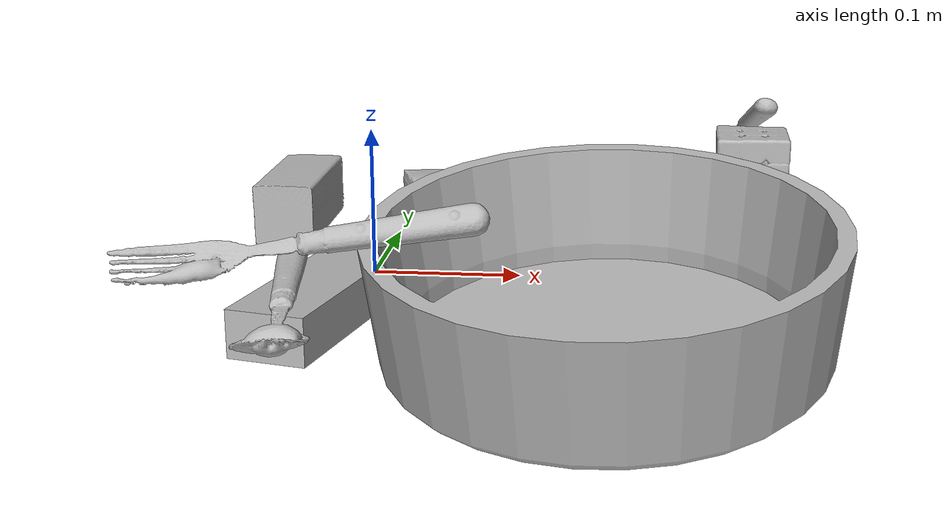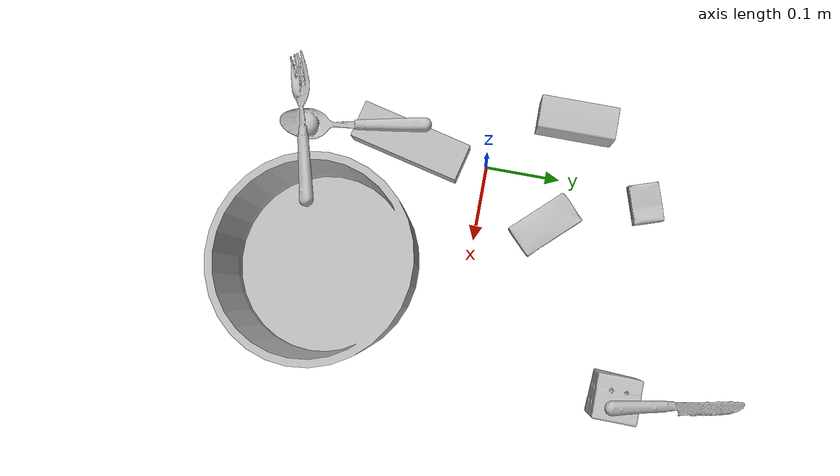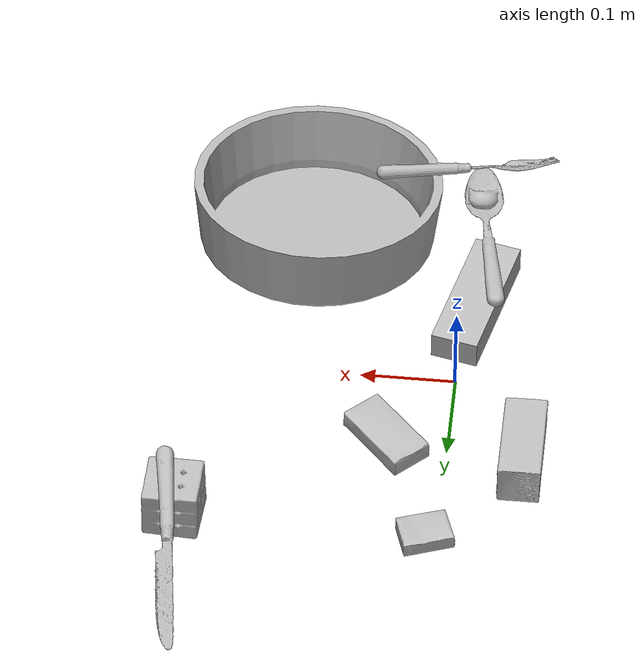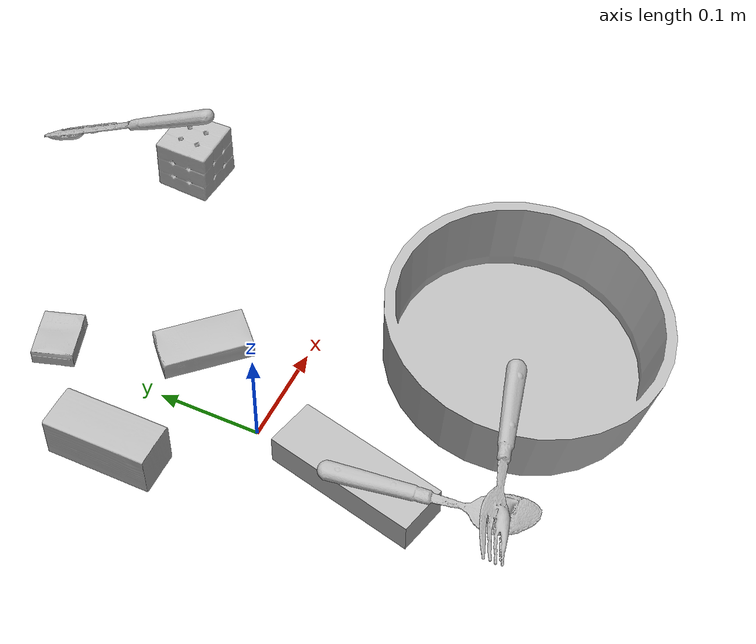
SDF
<sdf version="1.4">
  <world name="default">
    <light name="light1" type="point">
      <pose>0 0 1 0 0 0</pose>
      <diffuse>3 3 3 1</diffuse>
      <specular>3 3 3 1</specular>
    </light>
    <light name="light2" type="point">
      <pose>0 0.5 2 0 0 0</pose>
      <diffuse>1 1 1 1</diffuse>
      <specular>1 1 1 1</specular>
    </light>
    <light name="light3" type="point">
      <pose>0 0.5 2 0 0 0</pose>
      <diffuse>3 3 3 1</diffuse>
      <specular>3 3 3 1</specular>
    </light>
    <scene>
      <ambient>0.7 0.7 0.7</ambient>
    </scene>
    <model name="box11">
      <link name="link_box11">
        <collision name="default">
          <geometry>
            <mesh>
              <uri>model://cracker_box/collision_meshes/collision.obj</uri>
              <scale>0.25 0.25 0.25</scale>
            </mesh>
          </geometry>
          <surface>
            <friction>
              <ode>
                <mu>0.5</mu>
                <mu2>0.5</mu2>
              </ode>
            </friction>
          <contact>
        <ode>
            <max_vel>0</max_vel>
            <min_depth>0.0001</min_depth>
            <kp>1e8</kp>
        </ode>
    </contact></surface>
        </collision>
        <visual name="default">
          <geometry>
            <mesh>
              <uri>model://cracker_box/visual_meshes/visual.dae</uri>
              <scale>0.25 0.25 0.25</scale>
            </mesh>
          </geometry>
        </visual>
        <inertial>
          <mass>0.04448898881673813</mass>
          <pose>0.00023660270380787551 6.358561950037256e-05 -0.000425738311605528 -0.00031620780372907927 -0.011106488668730609 0.002546795468482302</pose>
          <inertia>
            <ixx>7.0725087e-06</ixx>
            <iyy>1.1678099e-05</iyy>
            <izz>1.666572e-05</izz>
            <ixy>0</ixy>
            <ixz>0</ixz>
            <iyz>0</iyz>
          </inertia>
        </inertial>
      </link>
      <pose>0.011487254872918129 0.21769677102565765 0.009096027351915836 -0.014050597269477065 -0.0050164433940262385 -2.8218114060471864</pose>
    </model>
    <model name="box12">
      <link name="link_box12">
        <collision name="default">
          <geometry>
            <mesh>
              <uri>model://wood_block/collision_meshes/collision.obj</uri>
              <scale>0.5 0.5 0.5</scale>
            </mesh>
          </geometry>
          <surface>
            <friction>
              <ode>
                <mu>0.5</mu>
                <mu2>0.5</mu2>
              </ode>
            </friction>
          <contact>
        <ode>
            <max_vel>0</max_vel>
            <min_depth>0.0001</min_depth>
            <kp>1e8</kp>
        </ode>
    </contact></surface>
        </collision>
        <visual name="default">
          <geometry>
            <mesh>
              <uri>model://wood_block/visual_meshes/visual.dae</uri>
              <scale>0.5 0.5 0.5</scale>
            </mesh>
          </geometry>
        </visual>
        <inertial>
          <mass>0.30308207869529724</mass>
          <pose>-2.906657982748584e-06 -0.000285404734313488 0.00013204291462898254 -0.05220975528484064 -0.0051926956083073895 -0.006861380255216688</pose>
          <inertia>
            <ixx>0.00010139242</ixx>
            <iyy>0.00032029866</iyy>
            <izz>0.0003191006</izz>
            <ixy>0</ixy>
            <ixz>0</ixz>
            <iyz>0</iyz>
          </inertia>
        </inertial>
      </link>
      <pose>-0.07841816544532776 0.10751324892044067 0.0226292684674263 -0.005208433516962111 0.00571877984796403 1.5743568743845602</pose>
    </model>
    <model name="box13">
      <link name="link_box13">
        <collision name="default">
          <geometry>
            <mesh>
              <uri>model://pudding_box/collision_meshes/collision.obj</uri>
              <scale>0.5 0.5 0.5</scale>
            </mesh>
          </geometry>
          <surface>
            <friction>
              <ode>
                <mu>0.5</mu>
                <mu2>0.5</mu2>
              </ode>
            </friction>
          <contact>
        <ode>
            <max_vel>0</max_vel>
            <min_depth>0.0001</min_depth>
            <kp>1e8</kp>
        </ode>
    </contact></surface>
        </collision>
        <visual name="default">
          <geometry>
            <mesh>
              <uri>model://pudding_box/visual_meshes/visual.dae</uri>
              <scale>0.5 0.5 0.5</scale>
            </mesh>
          </geometry>
        </visual>
        <inertial>
          <mass>0.06630203872919083</mass>
          <pose>0.00024474109522998333 0.00040339428232982755 -0.00025944141088984907 0.0052131027026664865 -0.006603797821229493 0.02007983447369903</pose>
          <inertia>
            <ixx>1.873776e-05</ixx>
            <iyy>1.2606899e-05</iyy>
            <izz>2.7671198e-05</izz>
            <ixy>0</ixy>
            <ixz>0</ixz>
            <iyz>0</iyz>
          </inertia>
        </inertial>
      </link>
      <pose>0.18061460554599762 -0.14199666678905487 0.011355206370353699 0.0121389412429759 0.095553616607017 -1.4015117230712864</pose>
    </model>
    <model name="box21">
      <link name="link_box21">
        <collision name="default">
          <geometry>
            <mesh>
              <uri>model://sugar_box/collision_meshes/collision.obj</uri>
              <scale>0.5 0.5 0.5</scale>
            </mesh>
          </geometry>
          <surface>
            <friction>
              <ode>
                <mu>0.5</mu>
                <mu2>0.5</mu2>
              </ode>
            </friction>
          <contact>
        <ode>
            <max_vel>0</max_vel>
            <min_depth>0.0001</min_depth>
            <kp>1e8</kp>
        </ode>
    </contact></surface>
        </collision>
        <visual name="default">
          <geometry>
            <mesh>
              <uri>model://sugar_box/visual_meshes/visual.dae</uri>
              <scale>0.5 0.5 0.5</scale>
            </mesh>
          </geometry>
        </visual>
        <inertial>
          <mass>0.09398066252470016</mass>
          <pose>0.0005171863595023751 1.924554817378521e-05 -0.00018182402709499002 -0.00040462650409139634 0.0010506636387973133 0.002615378555960767</pose>
          <inertia>
            <ixx>1.9576108e-05</ixx>
            <iyy>6.3274e-05</iyy>
            <izz>7.574653e-05</izz>
            <ixy>0</ixy>
            <ixz>0</ixz>
            <iyz>0</iyz>
          </inertia>
        </inertial>
      </link>
      <pose>0.06362735480070114 0.09069270640611649 0.011399303562939167 0.0007757800429905741 -0.02343302080327972 -0.8162518159962115</pose>
    </model>
    <model name="box22">
      <link name="link_box22">
        <collision name="default">
          <geometry>
            <mesh>
              <uri>model://jenga/collision_meshes/collision.obj</uri>
              <scale>1.0 1.0 1.0</scale>
            </mesh>
          </geometry>
          <surface>
            <friction>
              <ode>
                <mu>0.5</mu>
                <mu2>0.5</mu2>
              </ode>
            </friction>
          <contact>
        <ode>
            <max_vel>0</max_vel>
            <min_depth>0.0001</min_depth>
            <kp>1e8</kp>
        </ode>
    </contact></surface>
        </collision>
        <visual name="default">
          <geometry>
            <mesh>
              <uri>model://jenga/visual_meshes/visual.dae</uri>
              <scale>1.0 1.0 1.0</scale>
            </mesh>
          </geometry>
        </visual>
        <inertial>
          <mass>0.2620435655117035</mass>
          <pose>-2.5028555228345795e-07 -0.0001025000965455547 -4.092339804628864e-05 0.0 -7.342154049184251e-07 0.0</pose>
          <inertia>
            <ixx>7.251381e-05</ixx>
            <iyy>0.0004913516</iyy>
            <izz>0.00052455964</izz>
            <ixy>0</ixy>
            <ixz>0</ixz>
            <iyz>0</iyz>
          </inertia>
        </inertial>
      </link>
      <pose>-0.012503252364695072 -0.10427624732255936 0.015000002458691597 -2.055047107145608e-06 -2.0145125774647285e-07 1.3398340607032277</pose>
    </model>
    <model name="box23">
      <link name="link_box23">
        <collision name="default">
          <geometry>
            <mesh>
              <uri>model://rubiks_cube/collision_meshes/collision.obj</uri>
              <scale>1.0 1.0 1.0</scale>
            </mesh>
          </geometry>
          <surface>
            <friction>
              <ode>
                <mu>0.5</mu>
                <mu2>0.5</mu2>
              </ode>
            </friction>
          <contact>
        <ode>
            <max_vel>0</max_vel>
            <min_depth>0.0001</min_depth>
            <kp>1e8</kp>
        </ode>
    </contact></surface>
        </collision>
        <visual name="default">
          <geometry>
            <mesh>
              <uri>model://rubiks_cube/visual_meshes/visual.dae</uri>
              <scale>1.0 1.0 1.0</scale>
            </mesh>
          </geometry>
        </visual>
        <inertial>
          <mass>0.1897622048854828</mass>
          <pose>2.6721043468569405e-05 5.256967051536776e-05 -7.264316082000732e-06 -0.054673156626660294 -0.09814014504853939 -0.034453657529750985</pose>
          <inertia>
            <ixx>0.00010485636</ixx>
            <iyy>0.00010436737</iyy>
            <izz>0.000105725274</izz>
            <ixy>0</ixy>
            <ixz>0</ixz>
            <iyz>0</iyz>
          </inertia>
        </inertial>
      </link>
      <pose>0.2683562934398651 0.2141568809747696 0.028679003939032555 6.633935901290183e-07 1.7375411380459819e-06 -0.019532732247224353</pose>
    </model>
    <model name="plate1">
      <link name="link_plate1">
        <collision name="default">
          <geometry>
            <mesh>
              <uri>model://pan_tefal/collision_meshes/collision.obj</uri>
              <scale>1.0 1.0 1.0</scale>
            </mesh>
          </geometry>
          <surface>
            <friction>
              <ode>
                <mu>0.5</mu>
                <mu2>0.5</mu2>
              </ode>
            </friction>
          <contact>
        <ode>
            <max_vel>0</max_vel>
            <min_depth>0.0001</min_depth>
            <kp>1e8</kp>
        </ode>
    </contact></surface>
        </collision>
        <visual name="default">
          <geometry>
            <mesh>
              <uri>model://pan_tefal/visual_meshes/visual.dae</uri>
              <scale>1.0 1.0 1.0</scale>
            </mesh>
          </geometry>
        </visual>
        <inertial>
          <mass>0.8768928050994873</mass>
          <pose>-0.00018002584693022072 3.279091833974235e-05 -0.008514934219419956 0.0008190272128915226 -0.0003301349770144462 -0.3318573305948388</pose>
          <inertia>
            <ixx>0.0060531492</ixx>
            <iyy>0.006092174</iyy>
            <izz>0.011142679</izz>
            <ixy>0</ixy>
            <ixz>0</ixz>
            <iyz>0</iyz>
          </inertia>
        </inertial>
      </link>
      <pose>0.16497834026813507 -0.18818435072898865 0.053131092339754105 0.1287130238592246 0.009009691350026177 -0.19870843265446772</pose>
    </model>
    <model name="silverware1">
      <link name="link_silverware1">
        <collision name="default">
          <geometry>
            <mesh>
              <uri>model://spoon/collision_meshes/collision.obj</uri>
              <scale>1.0 1.0 1.0</scale>
            </mesh>
          </geometry>
          <surface>
            <friction>
              <ode>
                <mu>0.5</mu>
                <mu2>0.5</mu2>
              </ode>
            </friction>
          <contact>
        <ode>
            <max_vel>0</max_vel>
            <min_depth>0.0001</min_depth>
            <kp>1e8</kp>
        </ode>
    </contact></surface>
        </collision>
        <visual name="default">
          <geometry>
            <mesh>
              <uri>model://spoon/visual_meshes/visual.dae</uri>
              <scale>1.0 1.0 1.0</scale>
            </mesh>
          </geometry>
        </visual>
        <inertial>
          <mass>0.030811671167612076</mass>
          <pose>-0.005526314955204725 -0.0016034170985221863 -0.0007271655485965312 0.03521832474385929 -0.03906585488360169 0.0061506134218646934</pose>
          <inertia>
            <ixx>1.713795e-06</ixx>
            <iyy>0.000117237374</iyy>
            <izz>0.00011808256</izz>
            <ixy>0</ixy>
            <ixz>0</ixz>
            <iyz>0</iyz>
          </inertia>
        </inertial>
      </link>
      <pose>-0.017432168126106262 -0.17651596665382385 0.03799818456172943 0.04171949556094718 0.03955487752693548 -1.407048290908612</pose>
    </model>
    <model name="silverware2">
      <link name="link_silverware2">
        <collision name="default">
          <geometry>
            <mesh>
              <uri>model://fork/collision_meshes/collision.obj</uri>
              <scale>1.0 1.0 1.0</scale>
            </mesh>
          </geometry>
          <surface>
            <friction>
              <ode>
                <mu>0.5</mu>
                <mu2>0.5</mu2>
              </ode>
            </friction>
          <contact>
        <ode>
            <max_vel>0</max_vel>
            <min_depth>0.0001</min_depth>
            <kp>1e8</kp>
        </ode>
    </contact></surface>
        </collision>
        <visual name="default">
          <geometry>
            <mesh>
              <uri>model://fork/visual_meshes/visual.dae</uri>
              <scale>1.0 1.0 1.0</scale>
            </mesh>
          </geometry>
        </visual>
        <inertial>
          <mass>0.016358599066734314</mass>
          <pose>-0.029570044949650764 0.00046588238910771906 0.0003218862693756819 -0.013550710307666105 -0.010977838412833367 0.014453905587424366</pose>
          <inertia>
            <ixx>5.7346136e-07</ixx>
            <iyy>4.270759e-05</iyy>
            <izz>4.29641e-05</izz>
            <ixy>0</ixy>
            <ixz>0</ixz>
            <iyz>0</iyz>
          </inertia>
        </inertial>
      </link>
      <pose>0.008856996893882751 -0.22980904579162598 0.08771070092916489 -0.5290482809424658 0.10612202151416261 -2.878402283529192</pose>
    </model>
    <model name="silverware3">
      <link name="link_silverware3">
        <collision name="default">
          <geometry>
            <mesh>
              <uri>model://knife/collision_meshes/collision.obj</uri>
              <scale>1.0 1.0 1.0</scale>
            </mesh>
          </geometry>
          <surface>
            <friction>
              <ode>
                <mu>0.5</mu>
                <mu2>0.5</mu2>
              </ode>
            </friction>
          <contact>
        <ode>
            <max_vel>0</max_vel>
            <min_depth>0.0001</min_depth>
            <kp>1e8</kp>
        </ode>
    </contact></surface>
        </collision>
        <visual name="default">
          <geometry>
            <mesh>
              <uri>model://knife/visual_meshes/visual.dae</uri>
              <scale>1.0 1.0 1.0</scale>
            </mesh>
          </geometry>
        </visual>
        <inertial>
          <mass>0.02715744450688362</mass>
          <pose>-0.023785259574651718 0.0015275124460458755 5.062024501967244e-05 0.07304743927496513 0.01724841757037888 -0.007409820832494391</pose>
          <inertia>
            <ixx>7.708383e-07</ixx>
            <iyy>0.00010433449</iyy>
            <izz>0.00010458276</izz>
            <ixy>0</ixy>
            <ixz>0</ixz>
            <iyz>0</iyz>
          </inertia>
        </inertial>
      </link>
      <pose>0.26649272441864014 0.2931462228298187 0.041619665920734406 0.2586344581281754 0.39651258938692896 1.6976234850709702</pose>
    </model>
  <physics type="ode">
      <max_contacts>50</max_contacts>
      <ode>
        <solver>
          <type>quick</type>
          <iters>75</iters>
        </solver>
        <constraints>
          <contact_max_correcting_vel>0</contact_max_correcting_vel>
          <contact_surface_layer>0</contact_surface_layer>
        </constraints>
      </ode>
    </physics></world>
</sdf>
